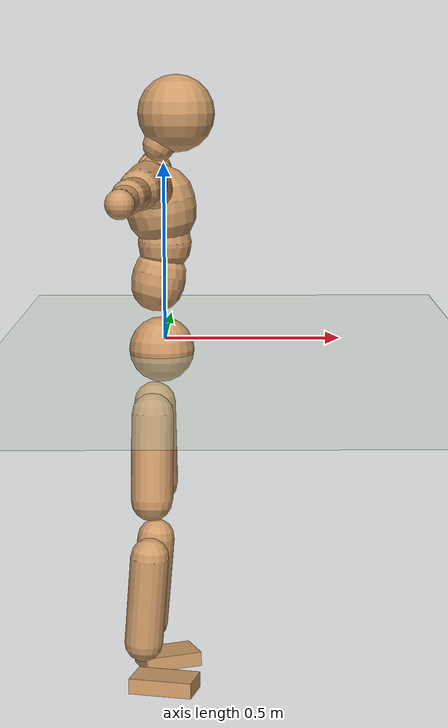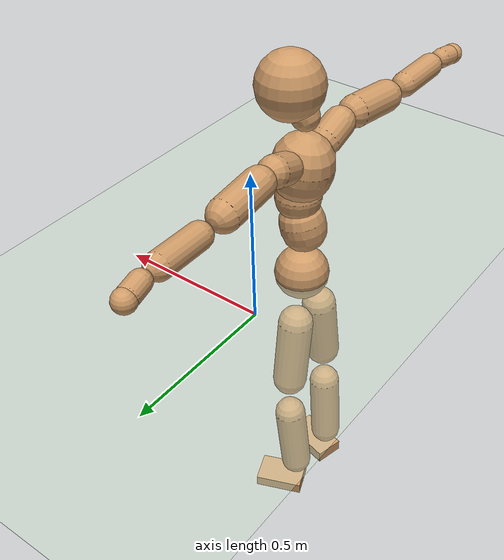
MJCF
<mujoco model="humanoid">
  <compiler coordinate="local" angle="radian"/>
  <default>
    <joint damping="0.0" armature="0.01" stiffness="0.0" limited="true"/>
    <geom conaffinity="1" condim="3" contype="7" margin="0.001" rgba="0.8 0.6 .4 1"/>
  </default>
  <asset>
    <texture type="skybox" builtin="gradient" rgb1=".4 .5 .6" rgb2="0 0 0" width="100" height="100"/>
    <texture builtin="flat" height="1278" mark="cross" markrgb="1 1 1" name="texgeom" random="0.01" rgb1="0.8 0.6 0.4" rgb2="0.8 0.6 0.4" type="cube" width="127"/>
    <texture builtin="checker" height="100" name="texplane" rgb1="0 0 0" rgb2="0.8 0.8 0.8" type="2d" width="100"/>
    <material name="MatPlane" reflectance="0.5" shininess="1" specular="1" texrepeat="60 60" texture="texplane"/>
    <material name="geom" texture="texgeom" texuniform="true"/>
  </asset>
  <worldbody>
    <light cutoff="100" diffuse="1 1 1" dir="-0 0 -1.3" directional="true" exponent="1" pos="0 0 1.3" specular=".1 .1 .1"/>
    <geom conaffinity="1" condim="3" name="floor" pos="0 0 0" rgba="0.8 0.9 0.8 1" size="100 100 .2" type="plane" material="MatPlane"/>
    <body name="Pelvis" pos="0.0008 -0.2428 0.0094">
      <freejoint name="Pelvis"/>
      <geom type="sphere" contype="1" conaffinity="1" density="500" size="0.0889" pos="0.0000 0.0000 0.0000" name="Pelvis"/>
      <body name="L_Hip" pos="-0.0249 0.0555 -0.0821">
        <joint name="L_Hip_x" type="hinge" pos="0 0 0" axis="1 0 0" stiffness="800" damping="80" armature="0.02" range="-180.0000 180.0000"/>
        <joint name="L_Hip_y" type="hinge" pos="0 0 0" axis="0 1 0" stiffness="800" damping="80" armature="0.02" range="-180.0000 180.0000"/>
        <joint name="L_Hip_z" type="hinge" pos="0 0 0" axis="0 0 1" stiffness="800" damping="80" armature="0.02" range="-180.0000 180.0000"/>
        <geom type="capsule" contype="1" conaffinity="1" density="500" fromto="0.0012 0.0093 -0.0791 0.0047 0.0372 -0.3163" size="0.0576" name="L_Hip"/>
        <body name="L_Knee" pos="0.0058 0.0465 -0.3953">
          <joint name="L_Knee_x" type="hinge" pos="0 0 0" axis="1 0 0" stiffness="800" damping="80" armature="0.02" range="-180.0000 180.0000"/>
          <joint name="L_Knee_y" type="hinge" pos="0 0 0" axis="0 1 0" stiffness="800" damping="80" armature="0.02" range="-180.0000 180.0000"/>
          <joint name="L_Knee_z" type="hinge" pos="0 0 0" axis="0 0 1" stiffness="800" damping="80" armature="0.02" range="-180.0000 180.0000"/>
          <geom type="capsule" contype="1" conaffinity="1" density="500" fromto="-0.0071 -0.0025 -0.0832 -0.0286 -0.0101 -0.3330" size="0.0526" name="L_Knee"/>
          <body name="L_Ankle" pos="-0.0357 -0.0126 -0.4162">
            <joint name="L_Ankle_x" type="hinge" pos="0 0 0" axis="1 0 0" stiffness="800" damping="80" armature="0.02" range="-180.0000 180.0000"/>
            <joint name="L_Ankle_y" type="hinge" pos="0 0 0" axis="0 1 0" stiffness="800" damping="80" armature="0.02" range="-180.0000 180.0000"/>
            <joint name="L_Ankle_z" type="hinge" pos="0 0 0" axis="0 0 1" stiffness="800" damping="80" armature="0.02" range="-180.0000 180.0000"/>
            <geom type="box" contype="1" conaffinity="1" density="500" pos="0.0592 0.0237 -0.0301" size="0.0828 0.0533 0.0206" quat="0.9820 0.0000 0.0000 0.1890" name="L_Ankle"/>
            <body name="L_Toe" pos="0.1184 0.0473 -0.0602">
              <joint name="L_Toe_x" type="hinge" pos="0 0 0" axis="1 0 0" stiffness="500" damping="50" armature="0.02" range="-180.0000 180.0000"/>
              <joint name="L_Toe_y" type="hinge" pos="0 0 0" axis="0 1 0" stiffness="500" damping="50" armature="0.02" range="-180.0000 180.0000"/>
              <joint name="L_Toe_z" type="hinge" pos="0 0 0" axis="0 0 1" stiffness="500" damping="50" armature="0.02" range="-180.0000 180.0000"/>
              <geom type="box" contype="1" conaffinity="1" density="500" pos="0.0000 0.0000 0.0318" size="0.001 0.0025 0.0011" quat="0.9812 0.0000 0.0000 0.1932" name="L_Toe"/>
            </body>
          </body>
        </body>
      </body>
      <body name="R_Hip" pos="-0.0227 -0.0578 -0.0896">
        <joint name="R_Hip_x" type="hinge" pos="0 0 0" axis="1 0 0" stiffness="800" damping="80" armature="0.02" range="-180.0000 180.0000"/>
        <joint name="R_Hip_y" type="hinge" pos="0 0 0" axis="0 1 0" stiffness="800" damping="80" armature="0.02" range="-180.0000 180.0000"/>
        <joint name="R_Hip_z" type="hinge" pos="0 0 0" axis="0 0 1" stiffness="800" damping="80" armature="0.02" range="-180.0000 180.0000"/>
        <geom type="capsule" contype="1" conaffinity="1" density="500" fromto="-0.0011 -0.0095 -0.0779 -0.0042 -0.0380 -0.3118" size="0.0572" name="R_Hip"/>
        <body name="R_Knee" pos="-0.0053 -0.0475 -0.3897">
          <joint name="R_Knee_x" type="hinge" pos="0 0 0" axis="1 0 0" stiffness="800" damping="80" armature="0.02" range="-180.0000 180.0000"/>
          <joint name="R_Knee_y" type="hinge" pos="0 0 0" axis="0 1 0" stiffness="800" damping="80" armature="0.02" range="-180.0000 180.0000"/>
          <joint name="R_Knee_z" type="hinge" pos="0 0 0" axis="0 0 1" stiffness="800" damping="80" armature="0.02" range="-180.0000 180.0000"/>
          <geom type="capsule" contype="1" conaffinity="1" density="500" fromto="-0.0065 0.0036 -0.0822 -0.0259 0.0144 -0.3286" size="0.0533" name="R_Knee"/>
          <body name="R_Ankle" pos="-0.0324 0.018 -0.4108">
            <joint name="R_Ankle_x" type="hinge" pos="0 0 0" axis="1 0 0" stiffness="800" damping="80" armature="0.02" range="-180.0000 180.0000"/>
            <joint name="R_Ankle_y" type="hinge" pos="0 0 0" axis="0 1 0" stiffness="800" damping="80" armature="0.02" range="-180.0000 180.0000"/>
            <joint name="R_Ankle_z" type="hinge" pos="0 0 0" axis="0 0 1" stiffness="800" damping="80" armature="0.02" range="-180.0000 180.0000"/>
            <geom type="box" contype="1" conaffinity="1" density="500" pos="0.0636 -0.0158 -0.0322" size="0.0888 0.05 0.022" quat="0.9926 0.0000 0.0000 -0.1211" name="R_Ankle"/>
            <body name="R_Toe" pos="0.1273 -0.0315 -0.0645">
              <joint name="R_Toe_x" type="hinge" pos="0 0 0" axis="1 0 0" stiffness="500" damping="50" armature="0.02" range="-180.0000 180.0000"/>
              <joint name="R_Toe_y" type="hinge" pos="0 0 0" axis="0 1 0" stiffness="500" damping="50" armature="0.02" range="-180.0000 180.0000"/>
              <joint name="R_Toe_z" type="hinge" pos="0 0 0" axis="0 0 1" stiffness="500" damping="50" armature="0.02" range="-180.0000 180.0000"/>
              <geom type="box" contype="1" conaffinity="1" density="500" pos="0.0000 0.0000 0.0343" size="0.001 0.0024 0.0012" quat="0.9937 0.0000 0.0000 -0.1120" name="R_Toe"/>
            </body>
          </body>
        </body>
      </body>
      <body name="Torso" pos="-0.0241 0.0042 0.1201">
        <joint name="Torso_x" type="hinge" pos="0 0 0" axis="1 0 0" stiffness="1000" damping="100" armature="0.02" range="-180.0000 180.0000"/>
        <joint name="Torso_y" type="hinge" pos="0 0 0" axis="0 1 0" stiffness="1000" damping="100" armature="0.02" range="-180.0000 180.0000"/>
        <joint name="Torso_z" type="hinge" pos="0 0 0" axis="0 0 1" stiffness="1000" damping="100" armature="0.02" range="-180.0000 180.0000"/>
        <geom type="capsule" contype="1" conaffinity="1" density="500" fromto="0.0202 0.0026 0.0850 0.0135 0.0017 0.0567" size="0.0727" name="Torso"/>
        <body name="Spine" pos="0.0336 0.0043 0.1417">
          <joint name="Spine_x" type="hinge" pos="0 0 0" axis="1 0 0" stiffness="1000" damping="100" armature="0.02" range="-180.0000 180.0000"/>
          <joint name="Spine_y" type="hinge" pos="0 0 0" axis="0 1 0" stiffness="1000" damping="100" armature="0.02" range="-180.0000 180.0000"/>
          <joint name="Spine_z" type="hinge" pos="0 0 0" axis="0 0 1" stiffness="1000" damping="100" armature="0.02" range="-180.0000 180.0000"/>
          <geom type="capsule" contype="1" conaffinity="1" density="500" fromto="0.0009 -0.0017 0.0343 0.0006 -0.0012 0.0229" size="0.0726" name="Spine"/>
          <body name="Chest" pos="0.0014 -0.0029 0.0572">
            <joint name="Chest_x" type="hinge" pos="0 0 0" axis="1 0 0" stiffness="1000" damping="100" armature="0.02" range="-180.0000 180.0000"/>
            <joint name="Chest_y" type="hinge" pos="0 0 0" axis="0 1 0" stiffness="1000" damping="100" armature="0.02" range="-180.0000 180.0000"/>
            <joint name="Chest_z" type="hinge" pos="0 0 0" axis="0 0 1" stiffness="1000" damping="100" armature="0.02" range="-180.0000 180.0000"/>
            <geom type="capsule" contype="1" conaffinity="1" density="500" fromto="-0.0132 -0.0056 0.0871 -0.0088 -0.0038 0.0581" size="0.0957" name="Chest"/>
            <body name="Neck" pos="-0.0244 -0.014 0.2133">
              <joint name="Neck_x" type="hinge" pos="0 0 0" axis="1 0 0" stiffness="500" damping="50" armature="0.02" range="-180.0000 180.0000"/>
              <joint name="Neck_y" type="hinge" pos="0 0 0" axis="0 1 0" stiffness="500" damping="50" armature="0.02" range="-180.0000 180.0000"/>
              <joint name="Neck_z" type="hinge" pos="0 0 0" axis="0 0 1" stiffness="500" damping="50" armature="0.02" range="-180.0000 180.0000"/>
              <geom type="capsule" contype="1" conaffinity="1" density="500" fromto="0.0115 0.0018 0.0209 0.0461 0.0072 0.0836" size="0.0437" name="Neck"/>
              <body name="Head" pos="0.0576 0.009 0.1046">
                <joint name="Head_x" type="hinge" pos="0 0 0" axis="1 0 0" stiffness="500" damping="50" armature="0.02" range="-180.0000 180.0000"/>
                <joint name="Head_y" type="hinge" pos="0 0 0" axis="0 1 0" stiffness="500" damping="50" armature="0.02" range="-180.0000 180.0000"/>
                <joint name="Head_z" type="hinge" pos="0 0 0" axis="0 0 1" stiffness="500" damping="50" armature="0.02" range="-180.0000 180.0000"/>
                <geom type="sphere" contype="1" conaffinity="1" density="500" size="0.1034" pos="0.0000 0.0000 0.0000" name="Head"/>
              </body>
            </body>
            <body name="L_Thorax" pos="-0.0194 0.0681 0.1109">
              <joint name="L_Thorax_x" type="hinge" pos="0 0 0" axis="1 0 0" stiffness="500" damping="50" armature="0.02" range="-180.0000 180.0000"/>
              <joint name="L_Thorax_y" type="hinge" pos="0 0 0" axis="0 1 0" stiffness="500" damping="50" armature="0.02" range="-180.0000 180.0000"/>
              <joint name="L_Thorax_z" type="hinge" pos="0 0 0" axis="0 0 1" stiffness="500" damping="50" armature="0.02" range="-180.0000 180.0000"/>
              <geom type="capsule" contype="1" conaffinity="1" density="500" fromto="-0.0032 0.0231 0.0091 -0.0126 0.0923 0.0365" size="0.0488" name="L_Thorax"/>
              <body name="L_Shoulder" pos="-0.0158 0.1153 0.0456">
                <joint name="L_Shoulder_x" type="hinge" pos="0 0 0" axis="1 0 0" stiffness="500" damping="50" armature="0.02" range="-720.0000 720.0000"/>
                <joint name="L_Shoulder_y" type="hinge" pos="0 0 0" axis="0 1 0" stiffness="500" damping="50" armature="0.02" range="-720.0000 720.0000"/>
                <joint name="L_Shoulder_z" type="hinge" pos="0 0 0" axis="0 0 1" stiffness="500" damping="50" armature="0.02" range="-720.0000 720.0000"/>
                <geom type="capsule" contype="1" conaffinity="1" density="500" fromto="-0.0029 0.0520 -0.0034 -0.0115 0.2081 -0.0138" size="0.0495" name="L_Shoulder"/>
                <body name="L_Elbow" pos="-0.0144 0.2601 -0.0172">
                  <joint name="L_Elbow_x" type="hinge" pos="0 0 0" axis="1 0 0" stiffness="500" damping="50" armature="0.02" range="-720.0000 720.0000"/>
                  <joint name="L_Elbow_y" type="hinge" pos="0 0 0" axis="0 1 0" stiffness="500" damping="50" armature="0.02" range="-720.0000 720.0000"/>
                  <joint name="L_Elbow_z" type="hinge" pos="0 0 0" axis="0 0 1" stiffness="500" damping="50" armature="0.02" range="-720.0000 720.0000"/>
                  <geom type="capsule" contype="1" conaffinity="1" density="500" fromto="-0.0021 0.0506 0.0019 -0.0085 0.2022 0.0077" size="0.0391" name="L_Elbow"/>
                  <body name="L_Wrist" pos="-0.0106 0.2528 0.0097">
                    <joint name="L_Wrist_x" type="hinge" pos="0 0 0" axis="1 0 0" stiffness="300" damping="30" armature="0.02" range="-180.0000 180.0000"/>
                    <joint name="L_Wrist_y" type="hinge" pos="0 0 0" axis="0 1 0" stiffness="300" damping="30" armature="0.02" range="-180.0000 180.0000"/>
                    <joint name="L_Wrist_z" type="hinge" pos="0 0 0" axis="0 0 1" stiffness="300" damping="30" armature="0.02" range="-180.0000 180.0000"/>
                    <geom type="capsule" contype="1" conaffinity="1" density="500" fromto="-0.0029 0.0161 -0.0020 -0.0116 0.0642 -0.0078" size="0.0317" name="L_Wrist"/>
                    <body name="L_Hand" pos="-0.0145 0.0803 -0.0098">
                      <joint name="L_Hand_x" type="hinge" pos="0 0 0" axis="1 0 0" stiffness="300" damping="30" armature="0.02" range="-180.0000 180.0000"/>
                      <joint name="L_Hand_y" type="hinge" pos="0 0 0" axis="0 1 0" stiffness="300" damping="30" armature="0.02" range="-180.0000 180.0000"/>
                      <joint name="L_Hand_z" type="hinge" pos="0 0 0" axis="0 0 1" stiffness="300" damping="30" armature="0.02" range="-180.0000 180.0000"/>
                      <geom type="sphere" contype="1" conaffinity="1" density="500" size="0.0331" pos="0.0000 0.0000 0.0000" name="L_Hand"/>
                    </body>
                  </body>
                </body>
              </body>
            </body>
            <body name="R_Thorax" pos="-0.0223 -0.0823 0.1113">
              <joint name="R_Thorax_x" type="hinge" pos="0 0 0" axis="1 0 0" stiffness="500" damping="50" armature="0.02" range="-180.0000 180.0000"/>
              <joint name="R_Thorax_y" type="hinge" pos="0 0 0" axis="0 1 0" stiffness="500" damping="50" armature="0.02" range="-180.0000 180.0000"/>
              <joint name="R_Thorax_z" type="hinge" pos="0 0 0" axis="0 0 1" stiffness="500" damping="50" armature="0.02" range="-180.0000 180.0000"/>
              <geom type="capsule" contype="1" conaffinity="1" density="500" fromto="-0.0010 -0.0218 0.0095 -0.0042 -0.0871 0.0379" size="0.0498" name="R_Thorax"/>
              <body name="R_Shoulder" pos="-0.0052 -0.1088 0.0474">
                <joint name="R_Shoulder_x" type="hinge" pos="0 0 0" axis="1 0 0" stiffness="500" damping="50" armature="0.02" range="-720.0000 720.0000"/>
                <joint name="R_Shoulder_y" type="hinge" pos="0 0 0" axis="0 1 0" stiffness="500" damping="50" armature="0.02" range="-720.0000 720.0000"/>
                <joint name="R_Shoulder_z" type="hinge" pos="0 0 0" axis="0 0 1" stiffness="500" damping="50" armature="0.02" range="-720.0000 720.0000"/>
                <geom type="capsule" contype="1" conaffinity="1" density="500" fromto="-0.0045 -0.0522 -0.0038 -0.0180 -0.2089 -0.0150" size="0.0517" name="R_Shoulder"/>
                <body name="R_Elbow" pos="-0.0225 -0.2611 -0.0188">
                  <joint name="R_Elbow_x" type="hinge" pos="0 0 0" axis="1 0 0" stiffness="500" damping="50" armature="0.02" range="-720.0000 720.0000"/>
                  <joint name="R_Elbow_y" type="hinge" pos="0 0 0" axis="0 1 0" stiffness="500" damping="50" armature="0.02" range="-720.0000 720.0000"/>
                  <joint name="R_Elbow_z" type="hinge" pos="0 0 0" axis="0 0 1" stiffness="500" damping="50" armature="0.02" range="-720.0000 720.0000"/>
                  <geom type="capsule" contype="1" conaffinity="1" density="500" fromto="-0.0015 -0.0528 0.0019 -0.0061 -0.2110 0.0075" size="0.0407" name="R_Elbow"/>
                  <body name="R_Wrist" pos="-0.0077 -0.2638 0.0094">
                    <joint name="R_Wrist_x" type="hinge" pos="0 0 0" axis="1 0 0" stiffness="300" damping="30" armature="0.02" range="-180.0000 180.0000"/>
                    <joint name="R_Wrist_y" type="hinge" pos="0 0 0" axis="0 1 0" stiffness="300" damping="30" armature="0.02" range="-180.0000 180.0000"/>
                    <joint name="R_Wrist_z" type="hinge" pos="0 0 0" axis="0 0 1" stiffness="300" damping="30" armature="0.02" range="-180.0000 180.0000"/>
                    <geom type="capsule" contype="1" conaffinity="1" density="500" fromto="-0.0019 -0.0168 -0.0016 -0.0076 -0.0671 -0.0063" size="0.033" name="R_Wrist"/>
                    <body name="R_Hand" pos="-0.0095 -0.0839 -0.0079">
                      <joint name="R_Hand_x" type="hinge" pos="0 0 0" axis="1 0 0" stiffness="300" damping="30" armature="0.02" range="-180.0000 180.0000"/>
                      <joint name="R_Hand_y" type="hinge" pos="0 0 0" axis="0 1 0" stiffness="300" damping="30" armature="0.02" range="-180.0000 180.0000"/>
                      <joint name="R_Hand_z" type="hinge" pos="0 0 0" axis="0 0 1" stiffness="300" damping="30" armature="0.02" range="-180.0000 180.0000"/>
                      <geom type="sphere" contype="1" conaffinity="1" density="500" size="0.0342" pos="0.0000 0.0000 0.0000" name="R_Hand"/>
                    </body>
                  </body>
                </body>
              </body>
            </body>
          </body>
        </body>
      </body>
    </body>
  </worldbody>
  <actuator>
    <motor name="L_Hip_x" joint="L_Hip_x" gear="500"/>
    <motor name="L_Hip_y" joint="L_Hip_y" gear="500"/>
    <motor name="L_Hip_z" joint="L_Hip_z" gear="500"/>
    <motor name="L_Knee_x" joint="L_Knee_x" gear="500"/>
    <motor name="L_Knee_y" joint="L_Knee_y" gear="500"/>
    <motor name="L_Knee_z" joint="L_Knee_z" gear="500"/>
    <motor name="L_Ankle_x" joint="L_Ankle_x" gear="500"/>
    <motor name="L_Ankle_y" joint="L_Ankle_y" gear="500"/>
    <motor name="L_Ankle_z" joint="L_Ankle_z" gear="500"/>
    <motor name="L_Toe_x" joint="L_Toe_x" gear="500"/>
    <motor name="L_Toe_y" joint="L_Toe_y" gear="500"/>
    <motor name="L_Toe_z" joint="L_Toe_z" gear="500"/>
    <motor name="R_Hip_x" joint="R_Hip_x" gear="500"/>
    <motor name="R_Hip_y" joint="R_Hip_y" gear="500"/>
    <motor name="R_Hip_z" joint="R_Hip_z" gear="500"/>
    <motor name="R_Knee_x" joint="R_Knee_x" gear="500"/>
    <motor name="R_Knee_y" joint="R_Knee_y" gear="500"/>
    <motor name="R_Knee_z" joint="R_Knee_z" gear="500"/>
    <motor name="R_Ankle_x" joint="R_Ankle_x" gear="500"/>
    <motor name="R_Ankle_y" joint="R_Ankle_y" gear="500"/>
    <motor name="R_Ankle_z" joint="R_Ankle_z" gear="500"/>
    <motor name="R_Toe_x" joint="R_Toe_x" gear="500"/>
    <motor name="R_Toe_y" joint="R_Toe_y" gear="500"/>
    <motor name="R_Toe_z" joint="R_Toe_z" gear="500"/>
    <motor name="Torso_x" joint="Torso_x" gear="500"/>
    <motor name="Torso_y" joint="Torso_y" gear="500"/>
    <motor name="Torso_z" joint="Torso_z" gear="500"/>
    <motor name="Spine_x" joint="Spine_x" gear="500"/>
    <motor name="Spine_y" joint="Spine_y" gear="500"/>
    <motor name="Spine_z" joint="Spine_z" gear="500"/>
    <motor name="Chest_x" joint="Chest_x" gear="500"/>
    <motor name="Chest_y" joint="Chest_y" gear="500"/>
    <motor name="Chest_z" joint="Chest_z" gear="500"/>
    <motor name="Neck_x" joint="Neck_x" gear="500"/>
    <motor name="Neck_y" joint="Neck_y" gear="500"/>
    <motor name="Neck_z" joint="Neck_z" gear="500"/>
    <motor name="Head_x" joint="Head_x" gear="500"/>
    <motor name="Head_y" joint="Head_y" gear="500"/>
    <motor name="Head_z" joint="Head_z" gear="500"/>
    <motor name="L_Thorax_x" joint="L_Thorax_x" gear="500"/>
    <motor name="L_Thorax_y" joint="L_Thorax_y" gear="500"/>
    <motor name="L_Thorax_z" joint="L_Thorax_z" gear="500"/>
    <motor name="L_Shoulder_x" joint="L_Shoulder_x" gear="500"/>
    <motor name="L_Shoulder_y" joint="L_Shoulder_y" gear="500"/>
    <motor name="L_Shoulder_z" joint="L_Shoulder_z" gear="500"/>
    <motor name="L_Elbow_x" joint="L_Elbow_x" gear="500"/>
    <motor name="L_Elbow_y" joint="L_Elbow_y" gear="500"/>
    <motor name="L_Elbow_z" joint="L_Elbow_z" gear="500"/>
    <motor name="L_Wrist_x" joint="L_Wrist_x" gear="500"/>
    <motor name="L_Wrist_y" joint="L_Wrist_y" gear="500"/>
    <motor name="L_Wrist_z" joint="L_Wrist_z" gear="500"/>
    <motor name="L_Hand_x" joint="L_Hand_x" gear="500"/>
    <motor name="L_Hand_y" joint="L_Hand_y" gear="500"/>
    <motor name="L_Hand_z" joint="L_Hand_z" gear="500"/>
    <motor name="R_Thorax_x" joint="R_Thorax_x" gear="500"/>
    <motor name="R_Thorax_y" joint="R_Thorax_y" gear="500"/>
    <motor name="R_Thorax_z" joint="R_Thorax_z" gear="500"/>
    <motor name="R_Shoulder_x" joint="R_Shoulder_x" gear="500"/>
    <motor name="R_Shoulder_y" joint="R_Shoulder_y" gear="500"/>
    <motor name="R_Shoulder_z" joint="R_Shoulder_z" gear="500"/>
    <motor name="R_Elbow_x" joint="R_Elbow_x" gear="500"/>
    <motor name="R_Elbow_y" joint="R_Elbow_y" gear="500"/>
    <motor name="R_Elbow_z" joint="R_Elbow_z" gear="500"/>
    <motor name="R_Wrist_x" joint="R_Wrist_x" gear="500"/>
    <motor name="R_Wrist_y" joint="R_Wrist_y" gear="500"/>
    <motor name="R_Wrist_z" joint="R_Wrist_z" gear="500"/>
    <motor name="R_Hand_x" joint="R_Hand_x" gear="500"/>
    <motor name="R_Hand_y" joint="R_Hand_y" gear="500"/>
    <motor name="R_Hand_z" joint="R_Hand_z" gear="500"/>
  </actuator>
  <contact>
    <exclude body1="Torso" body2="Chest"/>
    <exclude body1="Head" body2="Chest"/>
    <exclude body1="R_Knee" body2="R_Toe"/>
    <exclude body1="R_Knee" body2="L_Ankle"/>
    <exclude body1="R_Knee" body2="L_Toe"/>
    <exclude body1="L_Knee" body2="L_Toe"/>
    <exclude body1="L_Knee" body2="R_Ankle"/>
    <exclude body1="L_Knee" body2="R_Toe"/>
    <exclude body1="L_Shoulder" body2="Chest"/>
    <exclude body1="R_Shoulder" body2="Chest"/>
  </contact>
  <sensor/>
  <size njmax="700" nconmax="700"/>
</mujoco>
